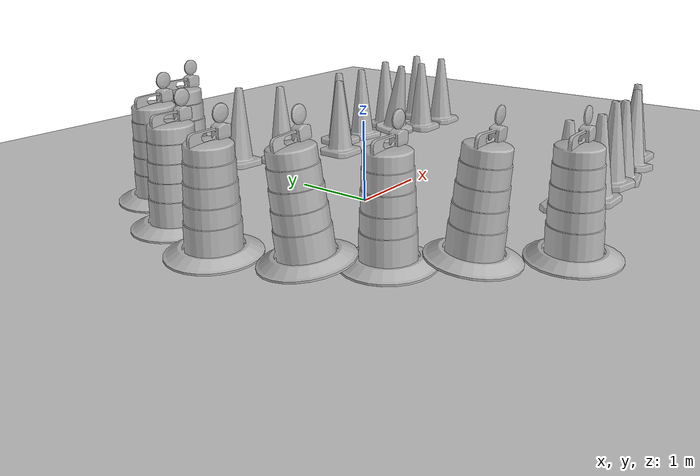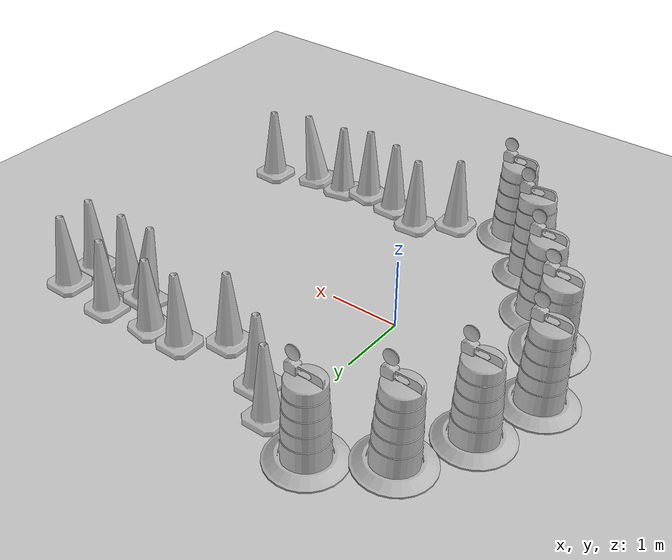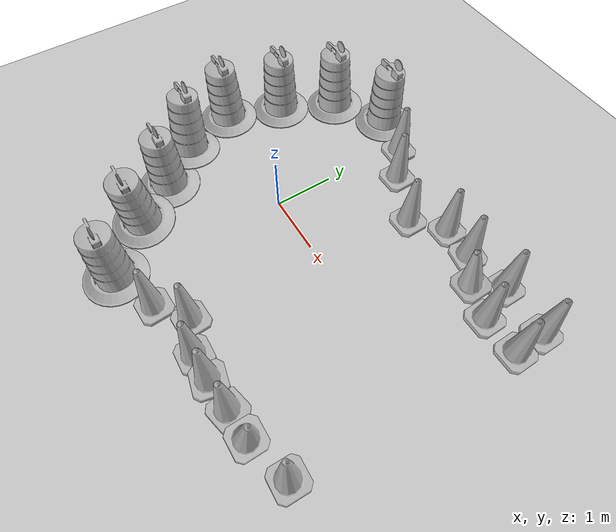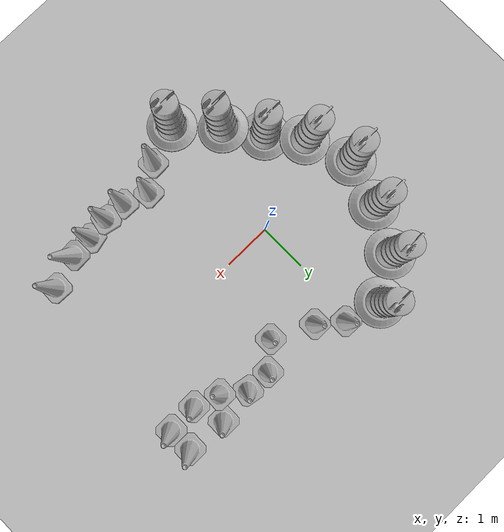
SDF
<sdf version="1.7">
 <world name="default">
  <light name="sun" type="directional">
   <pose>0 0 10 0 -0 0</pose>
   <diffuse>0.8 0.8 0.8 1</diffuse>
   <specular>0.2 0.2 0.2 1</specular>
   <attenuation>
    <range>1000</range>
    <constant>0.9</constant>
    <linear>0.01</linear>
    <quadratic>0.001</quadratic>
   </attenuation>
   <direction>-0.5 0.1 -0.9</direction>
   <spot><inner_angle>0</inner_angle><outer_angle>0</outer_angle><falloff>0</falloff></spot>
  </light>
  <model name="ground_plane">
   <static>1</static>
   <link name="link">
    <collision name="collision">
     <geometry><plane><normal>0 0 1</normal><size>100 100</size></plane></geometry>
     <surface>
      <contact><collide_bitmask>65535</collide_bitmask></contact>
      <friction><ode><mu>100</mu><mu2>50</mu2></ode></friction>
     </surface>
    </collision>
    <visual name="visual">
     <cast_shadows>0</cast_shadows>
     <geometry><plane><normal>0 0 1</normal><size>100 100</size></plane></geometry>
     <material>
      <script><uri>file://media/materials/scripts/gazebo.material</uri><name>Gazebo/Grey</name></script>
     </material>
    </visual>
   </link>
  </model>
  <gravity>0 0 -9.8</gravity>
  <magnetic_field>6e-06 2.3e-05 -4.2e-05</magnetic_field>
  <atmosphere type="adiabatic"/>
  <physics type="ode">
   <max_step_size>0.001</max_step_size>
   <real_time_factor>1</real_time_factor>
   <real_time_update_rate>1000</real_time_update_rate>
  </physics>
  <scene><ambient>0.6 0.6 0.6 1</ambient><background>0.7 0.7 0.7 1</background><shadows>1</shadows></scene>
  <audio><device>default</device></audio>
  <spherical_coordinates>
   <surface_model>EARTH_WGS84</surface_model>
   <latitude_deg>0</latitude_deg>
   <longitude_deg>0</longitude_deg>
   <elevation>0</elevation>
   <heading_deg>0</heading_deg>
  </spherical_coordinates>
  <model name="Construction Barrel">
   <link name="link">
    <inertial>
     <pose>0 0 0.4 0 -0 0</pose>
     <mass>500</mass>
     <inertia><ixx>51.2096</ixx><iyy>51.2096</iyy><izz>25</izz><ixy>0</ixy><ixz>0</ixz><iyz>0</iyz></inertia>
    </inertial>
    <collision name="collision">
     <geometry><mesh><uri>model://construction_barrel/meshes/construction_barrel.dae</uri></mesh></geometry>
    </collision>
    <visual name="visual">
     <geometry><mesh><uri>model://construction_barrel/meshes/construction_barrel.dae</uri></mesh></geometry>
    </visual>
   </link>
   <pose>-1.89259 1.16118 -9.2e-05 0.000195 -3.8e-05 -0.001289</pose>
  </model>
  <model name="Construction Barrel_clone">
   <link name="link">
    <inertial>
     <pose>0 0 0.4 0 -0 0</pose>
     <mass>500</mass>
     <inertia><ixx>51.2096</ixx><iyy>51.2096</iyy><izz>25</izz><ixy>0</ixy><ixz>0</ixz><iyz>0</iyz></inertia>
    </inertial>
    <collision name="collision">
     <geometry><mesh><uri>model://construction_barrel/meshes/construction_barrel.dae</uri></mesh></geometry>
    </collision>
    <visual name="visual">
     <geometry><mesh><uri>model://construction_barrel/meshes/construction_barrel.dae</uri></mesh></geometry>
    </visual>
   </link>
   <pose>-1.41793 2.05966 0.016165 0.015493 -0.027824 0.006737</pose>
  </model>
  <model name="Construction Barrel_clone_0">
   <link name="link">
    <inertial>
     <pose>0 0 0.4 0 -0 0</pose>
     <mass>500</mass>
     <inertia><ixx>51.2096</ixx><iyy>51.2096</iyy><izz>25</izz><ixy>0</ixy><ixz>0</ixz><iyz>0</iyz></inertia>
    </inertial>
    <collision name="collision">
     <geometry><mesh><uri>model://construction_barrel/meshes/construction_barrel.dae</uri></mesh></geometry>
    </collision>
    <visual name="visual">
     <geometry><mesh><uri>model://construction_barrel/meshes/construction_barrel.dae</uri></mesh></geometry>
    </visual>
   </link>
   <pose>-0.598011 2.59294 -1e-05 0 0 -0.001037</pose>
  </model>
  <model name="Construction Barrel_clone_1">
   <link name="link">
    <inertial>
     <pose>0 0 0.4 0 -0 0</pose>
     <mass>500</mass>
     <inertia><ixx>51.2096</ixx><iyy>51.2096</iyy><izz>25</izz><ixy>0</ixy><ixz>0</ixz><iyz>0</iyz></inertia>
    </inertial>
    <collision name="collision">
     <geometry><mesh><uri>model://construction_barrel/meshes/construction_barrel.dae</uri></mesh></geometry>
    </collision>
    <visual name="visual">
     <geometry><mesh><uri>model://construction_barrel/meshes/construction_barrel.dae</uri></mesh></geometry>
    </visual>
   </link>
   <pose>-2.18897 0.216482 0.013851 0.025319 -0.010474 -0.000854</pose>
  </model>
  <model name="Construction Barrel_clone_2">
   <link name="link">
    <inertial>
     <pose>0 0 0.4 0 -0 0</pose>
     <mass>500</mass>
     <inertia><ixx>51.2096</ixx><iyy>51.2096</iyy><izz>25</izz><ixy>0</ixy><ixz>0</ixz><iyz>0</iyz></inertia>
    </inertial>
    <collision name="collision">
     <geometry><mesh><uri>model://construction_barrel/meshes/construction_barrel.dae</uri></mesh></geometry>
    </collision>
    <visual name="visual">
     <geometry><mesh><uri>model://construction_barrel/meshes/construction_barrel.dae</uri></mesh></geometry>
    </visual>
   </link>
   <pose>-1.82868 -0.730258 0.052266 -0.082763 -0.062158 0.02125</pose>
  </model>
  <model name="Construction Barrel_clone_3">
   <link name="link">
    <inertial>
     <pose>0 0 0.4 0 -0 0</pose>
     <mass>500</mass>
     <inertia><ixx>51.2096</ixx><iyy>51.2096</iyy><izz>25</izz><ixy>0</ixy><ixz>0</ixz><iyz>0</iyz></inertia>
    </inertial>
    <collision name="collision">
     <geometry><mesh><uri>model://construction_barrel/meshes/construction_barrel.dae</uri></mesh></geometry>
    </collision>
    <visual name="visual">
     <geometry><mesh><uri>model://construction_barrel/meshes/construction_barrel.dae</uri></mesh></geometry>
    </visual>
   </link>
   <pose>-1.33554 -1.36142 -0 -1e-06 0 -0.010739</pose>
  </model>
  <model name="Construction Barrel_clone_4">
   <link name="link">
    <inertial>
     <pose>0 0 0.4 0 -0 0</pose>
     <mass>500</mass>
     <inertia><ixx>51.2096</ixx><iyy>51.2096</iyy><izz>25</izz><ixy>0</ixy><ixz>0</ixz><iyz>0</iyz></inertia>
    </inertial>
    <collision name="collision">
     <geometry><mesh><uri>model://construction_barrel/meshes/construction_barrel.dae</uri></mesh></geometry>
    </collision>
    <visual name="visual">
     <geometry><mesh><uri>model://construction_barrel/meshes/construction_barrel.dae</uri></mesh></geometry>
    </visual>
   </link>
   <pose>-0.832954 -2.03574 0.050114 0.078972 0.060449 0.013092</pose>
  </model>
  <model name="Construction Barrel_clone_5">
   <link name="link">
    <inertial>
     <pose>0 0 0.4 0 -0 0</pose>
     <mass>500</mass>
     <inertia><ixx>51.2096</ixx><iyy>51.2096</iyy><izz>25</izz><ixy>0</ixy><ixz>0</ixz><iyz>0</iyz></inertia>
    </inertial>
    <collision name="collision">
     <geometry><mesh><uri>model://construction_barrel/meshes/construction_barrel.dae</uri></mesh></geometry>
    </collision>
    <visual name="visual">
     <geometry><mesh><uri>model://construction_barrel/meshes/construction_barrel.dae</uri></mesh></geometry>
    </visual>
   </link>
   <pose>-0.131129 -2.79081 -1e-06 -1e-06 4e-06 0.008632</pose>
  </model>
  <model name="Construction Cone">
   <link name="link">
    <collision name="collision">
     <geometry>
      <mesh><scale>10 10 10</scale><uri>model://construction_cone/meshes/construction_cone.dae</uri></mesh>
     </geometry>
    </collision>
    <visual name="visual">
     <geometry>
      <mesh><scale>10 10 10</scale><uri>model://construction_cone/meshes/construction_cone.dae</uri></mesh>
     </geometry>
    </visual>
    <inertial>
     <inertia><ixx>1</ixx><ixy>0</ixy><ixz>0</ixz><iyy>1</iyy><iyz>0</iyz><izz>1</izz></inertia>
     <mass>1</mass>
    </inertial>
   </link>
   <pose>0.655188 -2.50183 0 0 -0 0.046197</pose>
  </model>
  <model name="Construction Cone_clone">
   <link name="link">
    <collision name="collision">
     <geometry>
      <mesh><scale>10 10 10</scale><uri>model://construction_cone/meshes/construction_cone.dae</uri></mesh>
     </geometry>
    </collision>
    <visual name="visual">
     <geometry>
      <mesh><scale>10 10 10</scale><uri>model://construction_cone/meshes/construction_cone.dae</uri></mesh>
     </geometry>
    </visual>
    <inertial>
     <inertia><ixx>1</ixx><ixy>0</ixy><ixz>0</ixz><iyy>1</iyy><iyz>0</iyz><izz>1</izz></inertia>
     <mass>1</mass>
    </inertial>
   </link>
   <pose>1.13439 -2.13098 -0 0 -1e-06 0.055222</pose>
  </model>
  <model name="Construction Cone_clone_0">
   <link name="link">
    <collision name="collision">
     <geometry>
      <mesh><scale>10 10 10</scale><uri>model://construction_cone/meshes/construction_cone.dae</uri></mesh>
     </geometry>
    </collision>
    <visual name="visual">
     <geometry>
      <mesh><scale>10 10 10</scale><uri>model://construction_cone/meshes/construction_cone.dae</uri></mesh>
     </geometry>
    </visual>
    <inertial>
     <inertia><ixx>1</ixx><ixy>0</ixy><ixz>0</ixz><iyy>1</iyy><iyz>0</iyz><izz>1</izz></inertia>
     <mass>1</mass>
    </inertial>
   </link>
   <pose>1.64521 -2.32321 -3e-06 0 2.8e-05 -0.034919</pose>
  </model>
  <model name="Construction Cone_clone_1">
   <link name="link">
    <collision name="collision">
     <geometry>
      <mesh><scale>10 10 10</scale><uri>model://construction_cone/meshes/construction_cone.dae</uri></mesh>
     </geometry>
    </collision>
    <visual name="visual">
     <geometry>
      <mesh><scale>10 10 10</scale><uri>model://construction_cone/meshes/construction_cone.dae</uri></mesh>
     </geometry>
    </visual>
    <inertial>
     <inertia><ixx>1</ixx><ixy>0</ixy><ixz>0</ixz><iyy>1</iyy><iyz>0</iyz><izz>1</izz></inertia>
     <mass>1</mass>
    </inertial>
   </link>
   <pose>2.10081 -2.31514 0.07607 -0.00014 -0.00044 -0.220821</pose>
  </model>
  <model name="Construction Cone_clone_2">
   <link name="link">
    <collision name="collision">
     <geometry>
      <mesh><scale>10 10 10</scale><uri>model://construction_cone/meshes/construction_cone.dae</uri></mesh>
     </geometry>
    </collision>
    <visual name="visual">
     <geometry>
      <mesh><scale>10 10 10</scale><uri>model://construction_cone/meshes/construction_cone.dae</uri></mesh>
     </geometry>
    </visual>
    <inertial>
     <inertia><ixx>1</ixx><ixy>0</ixy><ixz>0</ixz><iyy>1</iyy><iyz>0</iyz><izz>1</izz></inertia>
     <mass>1</mass>
    </inertial>
   </link>
   <pose>2.56803 -2.2751 0 0 -0 0.22635</pose>
  </model>
  <model name="Construction Cone_clone_3">
   <link name="link">
    <collision name="collision">
     <geometry>
      <mesh><scale>10 10 10</scale><uri>model://construction_cone/meshes/construction_cone.dae</uri></mesh>
     </geometry>
    </collision>
    <visual name="visual">
     <geometry>
      <mesh><scale>10 10 10</scale><uri>model://construction_cone/meshes/construction_cone.dae</uri></mesh>
     </geometry>
    </visual>
    <inertial>
     <inertia><ixx>1</ixx><ixy>0</ixy><ixz>0</ixz><iyy>1</iyy><iyz>0</iyz><izz>1</izz></inertia>
     <mass>1</mass>
    </inertial>
   </link>
   <pose>3.02406 -2.24521 0.043434 -0.034843 0.149983 -0.004133</pose>
  </model>
  <model name="Construction Cone_clone_4">
   <link name="link">
    <collision name="collision">
     <geometry>
      <mesh><scale>10 10 10</scale><uri>model://construction_cone/meshes/construction_cone.dae</uri></mesh>
     </geometry>
    </collision>
    <visual name="visual">
     <geometry>
      <mesh><scale>10 10 10</scale><uri>model://construction_cone/meshes/construction_cone.dae</uri></mesh>
     </geometry>
    </visual>
    <inertial>
     <inertia><ixx>1</ixx><ixy>0</ixy><ixz>0</ixz><iyy>1</iyy><iyz>0</iyz><izz>1</izz></inertia>
     <mass>1</mass>
    </inertial>
   </link>
   <pose>3.72379 -2.03074 0 -0 -0 -0.036232</pose>
  </model>
  <model name="Construction Cone_clone_5">
   <link name="link">
    <collision name="collision">
     <geometry>
      <mesh><scale>10 10 10</scale><uri>model://construction_cone/meshes/construction_cone.dae</uri></mesh>
     </geometry>
    </collision>
    <visual name="visual">
     <geometry>
      <mesh><scale>10 10 10</scale><uri>model://construction_cone/meshes/construction_cone.dae</uri></mesh>
     </geometry>
    </visual>
    <inertial>
     <inertia><ixx>1</ixx><ixy>0</ixy><ixz>0</ixz><iyy>1</iyy><iyz>0</iyz><izz>1</izz></inertia>
     <mass>1</mass>
    </inertial>
   </link>
   <pose>0.149898 2.37519 0.010619 0.012418 0.03378 -0.028881</pose>
  </model>
  <model name="Construction Cone_clone_6">
   <link name="link">
    <collision name="collision">
     <geometry>
      <mesh><scale>10 10 10</scale><uri>model://construction_cone/meshes/construction_cone.dae</uri></mesh>
     </geometry>
    </collision>
    <visual name="visual">
     <geometry>
      <mesh><scale>10 10 10</scale><uri>model://construction_cone/meshes/construction_cone.dae</uri></mesh>
     </geometry>
    </visual>
    <inertial>
     <inertia><ixx>1</ixx><ixy>0</ixy><ixz>0</ixz><iyy>1</iyy><iyz>0</iyz><izz>1</izz></inertia>
     <mass>1</mass>
    </inertial>
   </link>
   <pose>0.614717 1.99174 -1.8e-05 1e-06 1e-06 0.002505</pose>
  </model>
  <model name="Construction Cone_clone_7">
   <link name="link">
    <collision name="collision">
     <geometry>
      <mesh><scale>10 10 10</scale><uri>model://construction_cone/meshes/construction_cone.dae</uri></mesh>
     </geometry>
    </collision>
    <visual name="visual">
     <geometry>
      <mesh><scale>10 10 10</scale><uri>model://construction_cone/meshes/construction_cone.dae</uri></mesh>
     </geometry>
    </visual>
    <inertial>
     <inertia><ixx>1</ixx><ixy>0</ixy><ixz>0</ixz><iyy>1</iyy><iyz>0</iyz><izz>1</izz></inertia>
     <mass>1</mass>
    </inertial>
   </link>
   <pose>1.43104 1.59902 -0 0 -0 0</pose>
  </model>
  <model name="Construction Cone_clone_8">
   <link name="link">
    <collision name="collision">
     <geometry>
      <mesh><scale>10 10 10</scale><uri>model://construction_cone/meshes/construction_cone.dae</uri></mesh>
     </geometry>
    </collision>
    <visual name="visual">
     <geometry>
      <mesh><scale>10 10 10</scale><uri>model://construction_cone/meshes/construction_cone.dae</uri></mesh>
     </geometry>
    </visual>
    <inertial>
     <inertia><ixx>1</ixx><ixy>0</ixy><ixz>0</ixz><iyy>1</iyy><iyz>0</iyz><izz>1</izz></inertia>
     <mass>1</mass>
    </inertial>
   </link>
   <pose>1.91218 2.01045 1e-06 -3e-06 -2e-06 -0.008784</pose>
  </model>
  <model name="Construction Cone_clone_9">
   <link name="link">
    <collision name="collision">
     <geometry>
      <mesh><scale>10 10 10</scale><uri>model://construction_cone/meshes/construction_cone.dae</uri></mesh>
     </geometry>
    </collision>
    <visual name="visual">
     <geometry>
      <mesh><scale>10 10 10</scale><uri>model://construction_cone/meshes/construction_cone.dae</uri></mesh>
     </geometry>
    </visual>
    <inertial>
     <inertia><ixx>1</ixx><ixy>0</ixy><ixz>0</ixz><iyy>1</iyy><iyz>0</iyz><izz>1</izz></inertia>
     <mass>1</mass>
    </inertial>
   </link>
   <pose>2.4379 1.99598 -0.019901 0.001898 0.002185 -0.175222</pose>
  </model>
  <model name="Construction Cone_clone_10">
   <link name="link">
    <collision name="collision">
     <geometry>
      <mesh><scale>10 10 10</scale><uri>model://construction_cone/meshes/construction_cone.dae</uri></mesh>
     </geometry>
    </collision>
    <visual name="visual">
     <geometry>
      <mesh><scale>10 10 10</scale><uri>model://construction_cone/meshes/construction_cone.dae</uri></mesh>
     </geometry>
    </visual>
    <inertial>
     <inertia><ixx>1</ixx><ixy>0</ixy><ixz>0</ixz><iyy>1</iyy><iyz>0</iyz><izz>1</izz></inertia>
     <mass>1</mass>
    </inertial>
   </link>
   <pose>3.17558 2.07265 -1e-05 -0 -0 -0.009343</pose>
  </model>
  <model name="Construction Cone_clone_11">
   <link name="link">
    <collision name="collision">
     <geometry>
      <mesh><scale>10 10 10</scale><uri>model://construction_cone/meshes/construction_cone.dae</uri></mesh>
     </geometry>
    </collision>
    <visual name="visual">
     <geometry>
      <mesh><scale>10 10 10</scale><uri>model://construction_cone/meshes/construction_cone.dae</uri></mesh>
     </geometry>
    </visual>
    <inertial>
     <inertia><ixx>1</ixx><ixy>0</ixy><ixz>0</ixz><iyy>1</iyy><iyz>0</iyz><izz>1</izz></inertia>
     <mass>1</mass>
    </inertial>
   </link>
   <pose>3.99632 2.00495 -0 0 0 -0.01135</pose>
  </model>
  <model name="Construction Cone_clone_12">
   <link name="link">
    <collision name="collision">
     <geometry>
      <mesh><scale>10 10 10</scale><uri>model://construction_cone/meshes/construction_cone.dae</uri></mesh>
     </geometry>
    </collision>
    <visual name="visual">
     <geometry>
      <mesh><scale>10 10 10</scale><uri>model://construction_cone/meshes/construction_cone.dae</uri></mesh>
     </geometry>
    </visual>
    <inertial>
     <inertia><ixx>1</ixx><ixy>0</ixy><ixz>0</ixz><iyy>1</iyy><iyz>0</iyz><izz>1</izz></inertia>
     <mass>1</mass>
    </inertial>
   </link>
   <pose>4.01051 1.49911 -0 0 -0 0.001972</pose>
  </model>
  <model name="Construction Cone_clone_13">
   <link name="link">
    <collision name="collision">
     <geometry>
      <mesh><scale>10 10 10</scale><uri>model://construction_cone/meshes/construction_cone.dae</uri></mesh>
     </geometry>
    </collision>
    <visual name="visual">
     <geometry>
      <mesh><scale>10 10 10</scale><uri>model://construction_cone/meshes/construction_cone.dae</uri></mesh>
     </geometry>
    </visual>
    <inertial>
     <inertia><ixx>1</ixx><ixy>0</ixy><ixz>0</ixz><iyy>1</iyy><iyz>0</iyz><izz>1</izz></inertia>
     <mass>1</mass>
    </inertial>
   </link>
   <pose>2.8708 1.66742 0.044928 0.163465 -0.02361 -0.028023</pose>
  </model>
  <model name="Construction Cone_clone_14">
   <link name="link">
    <collision name="collision">
     <geometry>
      <mesh><scale>10 10 10</scale><uri>model://construction_cone/meshes/construction_cone.dae</uri></mesh>
     </geometry>
    </collision>
    <visual name="visual">
     <geometry>
      <mesh><scale>10 10 10</scale><uri>model://construction_cone/meshes/construction_cone.dae</uri></mesh>
     </geometry>
    </visual>
    <inertial>
     <inertia><ixx>1</ixx><ixy>0</ixy><ixz>0</ixz><iyy>1</iyy><iyz>0</iyz><izz>1</izz></inertia>
     <mass>1</mass>
    </inertial>
   </link>
   <pose>3.38958 1.48555 -0 0 -0 0</pose>
  </model>
 </world>
</sdf>
